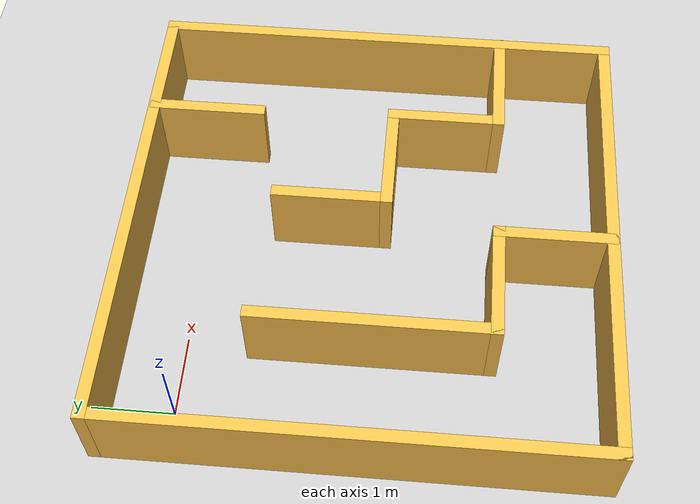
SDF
<sdf version="1.4">
 <world name="default">
  <light name="sun" type="directional">
   <pose>0 0 10 0 -0 0</pose>
   <diffuse>0.8 0.8 0.8 1</diffuse>
   <specular>0.2 0.2 0.2 1</specular>
   <attenuation>
    <range>1000</range>
    <constant>0.9</constant>
    <linear>0.01</linear>
    <quadratic>0.001</quadratic>
   </attenuation>
   <direction>0.5 0.1 -0.9</direction>
  </light>
  <model name="ground_plane">
   <static>1</static>
   <link name="link">
    <collision name="collision">
     <geometry><plane><normal>0 0 1</normal><size>100 100</size></plane></geometry>
     <surface><friction><ode><mu>100</mu><mu2>50</mu2></ode></friction></surface>
    </collision>
    <visual name="visual">
     <cast_shadows>0</cast_shadows>
     <geometry><plane><normal>0 0 1</normal><size>100 100</size></plane></geometry>
     <material>
      <script><uri>file://media/materials/scripts/gazebo.material</uri><name>Gazebo/Grey</name></script>
     </material>
    </visual>
    <velocity_decay><linear>0</linear><angular>0</angular></velocity_decay>
   </link>
  </model>
  <scene><ambient>0.4 0.4 0.4 1</ambient><background>0.7 0.7 0.7 1</background><shadows>0</shadows></scene>
  <physics type="ode">
   <max_step_size>0.01</max_step_size>
   <real_time_factor>1</real_time_factor>
   <real_time_update_rate>0</real_time_update_rate>
   <gravity>0 0 -9.8</gravity>
  </physics>
  <include><uri>model://Maze_ql_1</uri><pose>2.4 -2.1 0 0 0 0</pose></include>
 </world>
</sdf>

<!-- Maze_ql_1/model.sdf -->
<sdf version='1.5'>
  <model name='Maze_ql_1'>
    <pose frame=''>-2.2775 -1.578 0 0 -0 0</pose>
    <link name='Wall_10'>
      <collision name='Wall_10_Collision'>
        <geometry>
          <box>
            <size>6 0.15 1</size>
          </box>
        </geometry>
        <pose frame=''>0 0 0.5 0 -0 0</pose>
      </collision>
      <visual name='Wall_10_Visual'>
        <pose frame=''>0 0 0.5 0 -0 0</pose>
        <geometry>
          <box>
            <size>6 0.15 1</size>
          </box>
        </geometry>
        <material>
          <script>
            <uri>file://media/materials/scripts/gazebo.material</uri>
            <name>Gazebo/Grey</name>
          </script>
          <ambient>1 0.764706 0.305882 1</ambient>
        </material>
      </visual>
      <pose frame=''>-0.0015 2.925 0 0 -0 3.14159</pose>
    </link>
    <link name='Wall_11'>
      <collision name='Wall_11_Collision'>
        <geometry>
          <box>
            <size>6 0.15 1</size>
          </box>
        </geometry>
        <pose frame=''>0 0 0.5 0 -0 0</pose>
      </collision>
      <visual name='Wall_11_Visual'>
        <pose frame=''>0 0 0.5 0 -0 0</pose>
        <geometry>
          <box>
            <size>6 0.15 1</size>
          </box>
        </geometry>
        <material>
          <script>
            <uri>file://media/materials/scripts/gazebo.material</uri>
            <name>Gazebo/Grey</name>
          </script>
          <ambient>1 0.764706 0.305882 1</ambient>
        </material>
      </visual>
      <pose frame=''>-2.9265 0 0 0 0 -1.5708</pose>
    </link>
    <link name='Wall_13'>
      <collision name='Wall_13_Collision'>
        <geometry>
          <box>
            <size>1.5 0.15 1</size>
          </box>
        </geometry>
        <pose frame=''>0 0 0.5 0 -0 0</pose>
      </collision>
      <visual name='Wall_13_Visual'>
        <pose frame=''>0 0 0.5 0 -0 0</pose>
        <geometry>
          <box>
            <size>1.5 0.15 1</size>
          </box>
        </geometry>
        <material>
          <script>
            <uri>file://media/materials/scripts/gazebo.material</uri>
            <name>Gazebo/Grey</name>
          </script>
          <ambient>1 0.764706 0.305882 1</ambient>
        </material>
      </visual>
      <pose frame=''>-0.1665 -2.238 0 0 -0 1.5708</pose>
    </link>
    <link name='Wall_14'>
      <collision name='Wall_14_Collision'>
        <geometry>
          <box>
            <size>1.5 0.15 1</size>
          </box>
        </geometry>
        <pose frame=''>0 0 0.5 0 -0 0</pose>
      </collision>
      <visual name='Wall_14_Visual'>
        <pose frame=''>0 0 0.5 0 -0 0</pose>
        <geometry>
          <box>
            <size>1.5 0.15 1</size>
          </box>
        </geometry>
        <material>
          <script>
            <uri>file://media/materials/scripts/gazebo.material</uri>
            <name>Gazebo/Grey</name>
          </script>
          <ambient>1 0.764706 0.305882 1</ambient>
        </material>
      </visual>
      <pose frame=''>-0.8415 -1.563 0 0 -0 3.14159</pose>
    </link>
    <link name='Wall_15'>
      <collision name='Wall_15_Collision'>
        <geometry>
          <box>
            <size>3 0.15 1</size>
          </box>
        </geometry>
        <pose frame=''>0 0 0.5 0 -0 0</pose>
      </collision>
      <visual name='Wall_15_Visual'>
        <pose frame=''>0 0 0.5 0 -0 0</pose>
        <geometry>
          <box>
            <size>3 0.15 1</size>
          </box>
        </geometry>
        <material>
          <script>
            <uri>file://media/materials/scripts/gazebo.material</uri>
            <name>Gazebo/Grey</name>
          </script>
          <ambient>1 0.764706 0.305882 1</ambient>
        </material>
      </visual>
      <pose frame=''>-1.5165 -0.138 0 0 -0 1.5708</pose>
    </link>
    <link name='Wall_17'>
      <collision name='Wall_17_Collision'>
        <geometry>
          <box>
            <size>1.5 0.15 1</size>
          </box>
        </geometry>
        <pose frame=''>0 0 0.5 0 -0 0</pose>
      </collision>
      <visual name='Wall_17_Visual'>
        <pose frame=''>0 0 0.5 0 -0 0</pose>
        <geometry>
          <box>
            <size>1.5 0.15 1</size>
          </box>
        </geometry>
        <material>
          <script>
            <uri>file://media/materials/scripts/gazebo.material</uri>
            <name>Gazebo/Grey</name>
          </script>
          <ambient>1 0.764706 0.305882 1</ambient>
        </material>
      </visual>
      <pose frame=''>2.2515 -1.533 0 0 -0 3.14159</pose>
    </link>
    <link name='Wall_18'>
      <collision name='Wall_18_Collision'>
        <geometry>
          <box>
            <size>1.5 0.15 1</size>
          </box>
        </geometry>
        <pose frame=''>0 0 0.5 0 -0 0</pose>
      </collision>
      <visual name='Wall_18_Visual'>
        <pose frame=''>0 0 0.5 0 -0 0</pose>
        <geometry>
          <box>
            <size>1.5 0.15 1</size>
          </box>
        </geometry>
        <material>
          <script>
            <uri>file://media/materials/scripts/gazebo.material</uri>
            <name>Gazebo/Grey</name>
          </script>
          <ambient>1 0.764706 0.305882 1</ambient>
        </material>
      </visual>
      <pose frame=''>1.5765 -0.858 0 0 -0 1.5708</pose>
    </link>
    <link name='Wall_19'>
      <collision name='Wall_19_Collision'>
        <geometry>
          <box>
            <size>1.5 0.15 1</size>
          </box>
        </geometry>
        <pose frame=''>0 0 0.5 0 -0 0</pose>
      </collision>
      <visual name='Wall_19_Visual'>
        <pose frame=''>0 0 0.5 0 -0 0</pose>
        <geometry>
          <box>
            <size>1.5 0.15 1</size>
          </box>
        </geometry>
        <material>
          <script>
            <uri>file://media/materials/scripts/gazebo.material</uri>
            <name>Gazebo/Grey</name>
          </script>
          <ambient>1 0.764706 0.305882 1</ambient>
        </material>
      </visual>
      <pose frame=''>0.9015 -0.183 0 0 -0 3.14159</pose>
    </link>
    <link name='Wall_20'>
      <collision name='Wall_20_Collision'>
        <geometry>
          <box>
            <size>1.5 0.15 1</size>
          </box>
        </geometry>
        <pose frame=''>0 0 0.5 0 -0 0</pose>
      </collision>
      <visual name='Wall_20_Visual'>
        <pose frame=''>0 0 0.5 0 -0 0</pose>
        <geometry>
          <box>
            <size>1.5 0.15 1</size>
          </box>
        </geometry>
        <material>
          <script>
            <uri>file://media/materials/scripts/gazebo.material</uri>
            <name>Gazebo/Grey</name>
          </script>
          <ambient>1 0.764706 0.305882 1</ambient>
        </material>
      </visual>
      <pose frame=''>0.2265 0.492 0 0 -0 1.5708</pose>
    </link>
    <link name='Wall_24'>
      <collision name='Wall_24_Collision'>
        <geometry>
          <box>
            <size>1.5 0.15 1</size>
          </box>
        </geometry>
        <pose frame=''>0 0 0.5 0 -0 0</pose>
      </collision>
      <visual name='Wall_24_Visual'>
        <pose frame=''>0 0 0.5 0 -0 0</pose>
        <geometry>
          <box>
            <size>1.5 0.15 1</size>
          </box>
        </geometry>
        <material>
          <script>
            <uri>file://media/materials/scripts/gazebo.material</uri>
            <name>Gazebo/Grey</name>
          </script>
          <ambient>1 0.764706 0.305882 1</ambient>
        </material>
      </visual>
      <pose frame=''>1.5005 2.231 0 0 0 -1.5708</pose>
    </link>
    <link name='Wall_6'>
      <collision name='Wall_6_Collision'>
        <geometry>
          <box>
            <size>6 0.15 1</size>
          </box>
        </geometry>
        <pose frame=''>0 0 0.5 0 -0 0</pose>
      </collision>
      <visual name='Wall_6_Visual'>
        <pose frame=''>0 0 0.5 0 -0 0</pose>
        <geometry>
          <box>
            <size>6 0.15 1</size>
          </box>
        </geometry>
        <material>
          <script>
            <uri>file://media/materials/scripts/gazebo.material</uri>
            <name>Gazebo/Grey</name>
          </script>
          <ambient>1 0.764706 0.305882 1</ambient>
        </material>
      </visual>
      <pose frame=''>-0.0015 -2.925 0 0 -0 0</pose>
    </link>
    <link name='Wall_7'>
      <collision name='Wall_7_Collision'>
        <geometry>
          <box>
            <size>6 0.15 1</size>
          </box>
        </geometry>
        <pose frame=''>0 0 0.5 0 -0 0</pose>
      </collision>
      <visual name='Wall_7_Visual'>
        <pose frame=''>0 0 0.5 0 -0 0</pose>
        <geometry>
          <box>
            <size>6 0.15 1</size>
          </box>
        </geometry>
        <material>
          <script>
            <uri>file://media/materials/scripts/gazebo.material</uri>
            <name>Gazebo/Grey</name>
          </script>
          <ambient>1 0.764706 0.305882 1</ambient>
        </material>
      </visual>
      <pose frame=''>2.9235 0 0 0 -0 1.5708</pose>
    </link>
    <static>1</static>
  </model>
</sdf>
